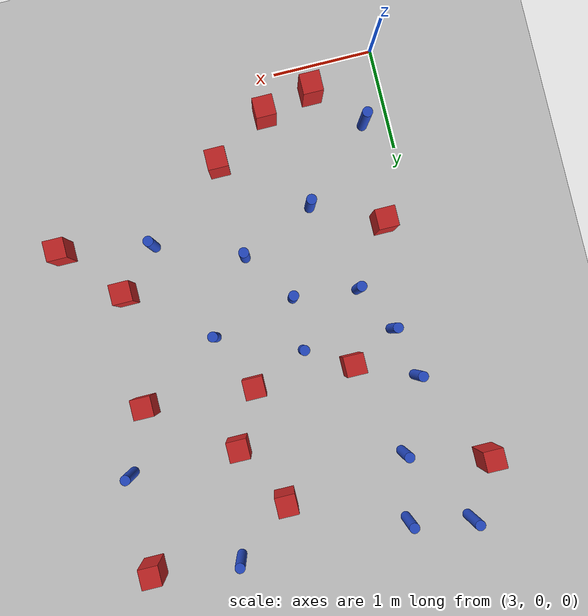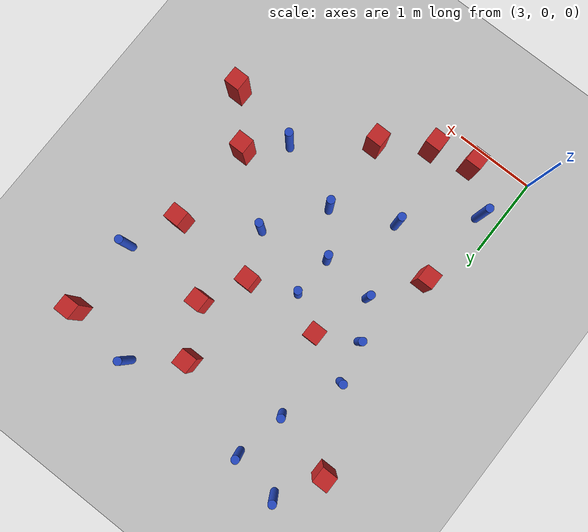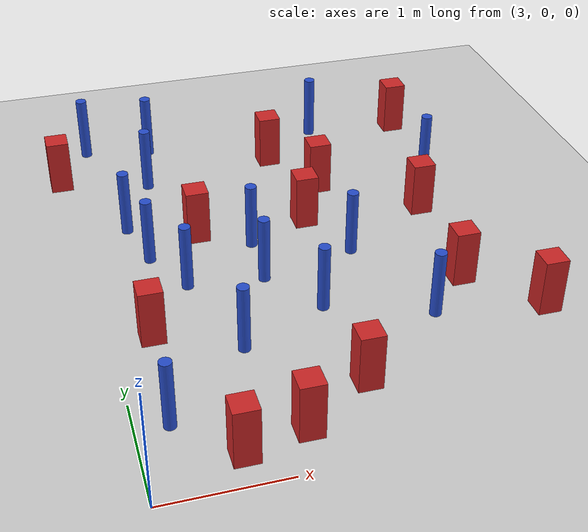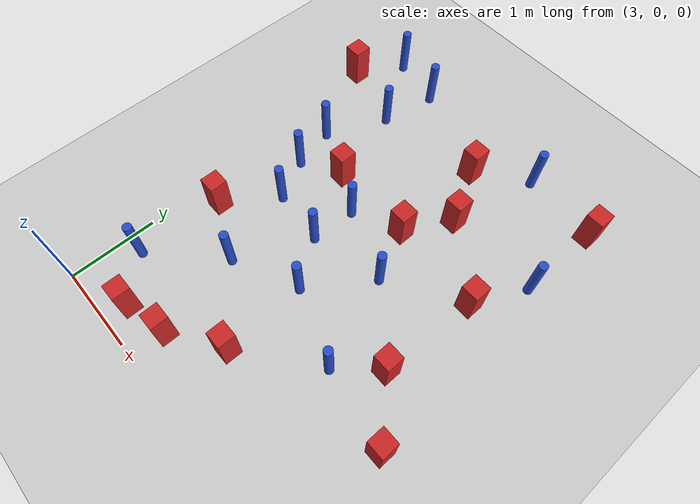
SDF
<sdf version="1.6">
 <world name="default">
  <model name="ground_plane">
   <static>1</static>
   <link name="link">
    <collision name="collision">
     <geometry><plane><normal>0 0 1</normal><size>100 100</size></plane></geometry>
     <surface><friction><ode><mu>100</mu><mu2>50</mu2></ode></friction></surface>
    </collision>
    <visual name="visual">
     <cast_shadows>0</cast_shadows>
     <geometry><plane><normal>0 0 1</normal><size>100 100</size></plane></geometry>
     <material>
      <ambient>1.0 1.0 1.0 1.0</ambient>
      <diffuse>0.8 0.8 0.8 1.0</diffuse>
      <specular>0.01 0.01 0.01 1.000000</specular>
     </material>
    </visual>
   </link>
  </model>
  <model name="square_post_obstacle7">
   <static>true</static>
   <pose>3.69847838354 0.283628622711 8.22691968438e-08 7.2212513382e-06 -7.54495500217e-07 2.29674213826e-05</pose>
   <link name="link">
    <pose>0 0 0.25 0 -0 0</pose>
    <inertial>
     <mass>100</mass>
     <inertia>
      <ixx>0.166667</ixx>
      <ixy>0</ixy>
      <ixz>0</ixz>
      <iyy>0.166667</iyy>
      <iyz>0</iyz>
      <izz>0.166667</izz>
     </inertia>
    </inertial>
    <collision name="collision"><geometry><box><size>.2 .2 .5</size></box></geometry></collision>
    <visual name="visual">
     <geometry><box><size>.2 .2 .5</size></box></geometry>
     <material>
      <script><name>Gazebo/Red</name><uri>file://media/materials/scripts/gazebo.material</uri></script>
     </material>
    </visual>
   </link>
  </model>
  <model name="square_post_obstacle17">
   <static>true</static>
   <pose>4.7562189727 0.773854882955 8.22691968438e-08 7.2212513382e-06 -7.54495500217e-07 2.29674213826e-05</pose>
   <link name="link">
    <pose>0 0 0.25 0 -0 0</pose>
    <inertial>
     <mass>100</mass>
     <inertia>
      <ixx>0.166667</ixx>
      <ixy>0</ixy>
      <ixz>0</ixz>
      <iyy>0.166667</iyy>
      <iyz>0</iyz>
      <izz>0.166667</izz>
     </inertia>
    </inertial>
    <collision name="collision"><geometry><box><size>.2 .2 .5</size></box></geometry></collision>
    <visual name="visual">
     <geometry><box><size>.2 .2 .5</size></box></geometry>
     <material>
      <script><name>Gazebo/Red</name><uri>file://media/materials/scripts/gazebo.material</uri></script>
     </material>
    </visual>
   </link>
  </model>
  <model name="square_post_obstacle21">
   <static>true</static>
   <pose>6.45568140457 1.25670714428 8.22691968438e-08 7.2212513382e-06 -7.54495500217e-07 2.29674213826e-05</pose>
   <link name="link">
    <pose>0 0 0.25 0 -0 0</pose>
    <inertial>
     <mass>100</mass>
     <inertia>
      <ixx>0.166667</ixx>
      <ixy>0</ixy>
      <ixz>0</ixz>
      <iyy>0.166667</iyy>
      <iyz>0</iyz>
      <izz>0.166667</izz>
     </inertia>
    </inertial>
    <collision name="collision"><geometry><box><size>.2 .2 .5</size></box></geometry></collision>
    <visual name="visual">
     <geometry><box><size>.2 .2 .5</size></box></geometry>
     <material>
      <script><name>Gazebo/Red</name><uri>file://media/materials/scripts/gazebo.material</uri></script>
     </material>
    </visual>
   </link>
  </model>
  <model name="pole_obstacle27">
   <static>true</static>
   <pose>3.25971585323 0.710181024626 2.88873142074e-08 -9.90536689285e-09 4.60219949002e-07 -1.20965994953e-07</pose>
   <link name="link">
    <pose>0 0 0.3 0 -0 0</pose>
    <inertial>
     <mass>1</mass>
     <inertia><ixx>0.145833</ixx><ixy>0</ixy><ixz>0</ixz><iyy>0.145833</iyy><iyz>0</iyz><izz>0.125</izz></inertia>
    </inertial>
    <collision name="collision">
     <geometry><cylinder><radius>0.05</radius><length>.6</length></cylinder></geometry>
    </collision>
    <visual name="visual">
     <geometry><cylinder><radius>0.05</radius><length>.6</length></cylinder></geometry>
     <material>
      <script><name>Gazebo/Blue</name><uri>file://media/materials/scripts/gazebo.material</uri></script>
     </material>
    </visual>
   </link>
  </model>
  <model name="pole_obstacle41">
   <static>true</static>
   <pose>5.18488431117 2.42695143436 2.88873142074e-08 -9.90536690245e-09 4.6021994898e-07 -1.20965994966e-07</pose>
   <link name="link">
    <pose>0 0 0.3 0 -0 0</pose>
    <inertial>
     <mass>1</mass>
     <inertia><ixx>0.145833</ixx><ixy>0</ixy><ixz>0</ixz><iyy>0.145833</iyy><iyz>0</iyz><izz>0.125</izz></inertia>
    </inertial>
    <collision name="collision">
     <geometry><cylinder><radius>0.05</radius><length>.6</length></cylinder></geometry>
    </collision>
    <visual name="visual">
     <geometry><cylinder><radius>0.05</radius><length>.6</length></cylinder></geometry>
     <material>
      <script><name>Gazebo/Blue</name><uri>file://media/materials/scripts/gazebo.material</uri></script>
     </material>
    </visual>
   </link>
  </model>
  <model name="pole_obstacle45">
   <static>true</static>
   <pose>3.97215387689 1.3896070158 2.88873142074e-08 -9.90536689315e-09 4.60219949002e-07 -1.20965994954e-07</pose>
   <link name="link">
    <pose>0 0 0.3 0 -0 0</pose>
    <inertial>
     <mass>1</mass>
     <inertia><ixx>0.145833</ixx><ixy>0</ixy><ixz>0</ixz><iyy>0.145833</iyy><iyz>0</iyz><izz>0.125</izz></inertia>
    </inertial>
    <collision name="collision">
     <geometry><cylinder><radius>0.05</radius><length>.6</length></cylinder></geometry>
    </collision>
    <visual name="visual">
     <geometry><cylinder><radius>0.05</radius><length>.6</length></cylinder></geometry>
     <material>
      <script><name>Gazebo/Blue</name><uri>file://media/materials/scripts/gazebo.material</uri></script>
     </material>
    </visual>
   </link>
  </model>
  <model name="square_post_obstacle44">
   <static>true</static>
   <pose>6.30355910788 4.48778055035 8.22691968438e-08 7.2212513382e-06 -7.54495500217e-07 2.29674213826e-05</pose>
   <link name="link">
    <pose>0 0 0.25 0 -0 0</pose>
    <inertial>
     <mass>100</mass>
     <inertia>
      <ixx>0.166667</ixx>
      <ixy>0</ixy>
      <ixz>0</ixz>
      <iyy>0.166667</iyy>
      <iyz>0</iyz>
      <izz>0.166667</izz>
     </inertia>
    </inertial>
    <collision name="collision"><geometry><box><size>.2 .2 .5</size></box></geometry></collision>
    <visual name="visual">
     <geometry><box><size>.2 .2 .5</size></box></geometry>
     <material>
      <script><name>Gazebo/Red</name><uri>file://media/materials/scripts/gazebo.material</uri></script>
     </material>
    </visual>
   </link>
  </model>
  <model name="pole_obstacle49">
   <static>true</static>
   <pose>4.71426595015 1.72589574953 2.88873142074e-08 -9.90536689445e-09 4.60219948999e-07 -1.20965994956e-07</pose>
   <link name="link">
    <pose>0 0 0.3 0 -0 0</pose>
    <inertial>
     <mass>1</mass>
     <inertia><ixx>0.145833</ixx><ixy>0</ixy><ixz>0</ixz><iyy>0.145833</iyy><iyz>0</iyz><izz>0.125</izz></inertia>
    </inertial>
    <collision name="collision">
     <geometry><cylinder><radius>0.05</radius><length>.6</length></cylinder></geometry>
    </collision>
    <visual name="visual">
     <geometry><cylinder><radius>0.05</radius><length>.6</length></cylinder></geometry>
     <material>
      <script><name>Gazebo/Blue</name><uri>file://media/materials/scripts/gazebo.material</uri></script>
     </material>
    </visual>
   </link>
  </model>
  <model name="square_post_obstacle57">
   <static>true</static>
   <pose>5.21335566755 3.52832100325 8.22691968438e-08 7.2212513382e-06 -7.54495500217e-07 2.29674213826e-05</pose>
   <link name="link">
    <pose>0 0 0.25 0 -0 0</pose>
    <inertial>
     <mass>100</mass>
     <inertia>
      <ixx>0.166667</ixx>
      <ixy>0</ixy>
      <ixz>0</ixz>
      <iyy>0.166667</iyy>
      <iyz>0</iyz>
      <izz>0.166667</izz>
     </inertia>
    </inertial>
    <collision name="collision"><geometry><box><size>.2 .2 .5</size></box></geometry></collision>
    <visual name="visual">
     <geometry><box><size>.2 .2 .5</size></box></geometry>
     <material>
      <script><name>Gazebo/Red</name><uri>file://media/materials/scripts/gazebo.material</uri></script>
     </material>
    </visual>
   </link>
  </model>
  <model name="pole_obstacle56">
   <static>true</static>
   <pose>3.71044648429 2.29824718554 2.88873142074e-08 -9.90536690232e-09 4.6021994898e-07 -1.20965994968e-07</pose>
   <link name="link">
    <pose>0 0 0.3 0 -0 0</pose>
    <inertial>
     <mass>1</mass>
     <inertia><ixx>0.145833</ixx><ixy>0</ixy><ixz>0</ixz><iyy>0.145833</iyy><iyz>0</iyz><izz>0.125</izz></inertia>
    </inertial>
    <collision name="collision">
     <geometry><cylinder><radius>0.05</radius><length>.6</length></cylinder></geometry>
    </collision>
    <visual name="visual">
     <geometry><cylinder><radius>0.05</radius><length>.6</length></cylinder></geometry>
     <material>
      <script><name>Gazebo/Blue</name><uri>file://media/materials/scripts/gazebo.material</uri></script>
     </material>
    </visual>
   </link>
  </model>
  <model name="pole_obstacle69">
   <static>true</static>
   <pose>6.29559286488 3.53321743497 2.88873142074e-08 -9.90536690245e-09 4.6021994898e-07 -1.20965994966e-07</pose>
   <link name="link">
    <pose>0 0 0.3 0 -0 0</pose>
    <inertial>
     <mass>1</mass>
     <inertia><ixx>0.145833</ixx><ixy>0</ixy><ixz>0</ixz><iyy>0.145833</iyy><iyz>0</iyz><izz>0.125</izz></inertia>
    </inertial>
    <collision name="collision">
     <geometry><cylinder><radius>0.05</radius><length>.6</length></cylinder></geometry>
    </collision>
    <visual name="visual">
     <geometry><cylinder><radius>0.05</radius><length>.6</length></cylinder></geometry>
     <material>
      <script><name>Gazebo/Blue</name><uri>file://media/materials/scripts/gazebo.material</uri></script>
     </material>
    </visual>
   </link>
  </model>
  <model name="pole_obstacle87">
   <static>true</static>
   <pose>4.35390807123 2.2327341651 2.88873142074e-08 -9.90536690245e-09 4.6021994898e-07 -1.20965994966e-07</pose>
   <link name="link">
    <pose>0 0 0.3 0 -0 0</pose>
    <inertial>
     <mass>1</mass>
     <inertia><ixx>0.145833</ixx><ixy>0</ixy><ixz>0</ixz><iyy>0.145833</iyy><iyz>0</iyz><izz>0.125</izz></inertia>
    </inertial>
    <collision name="collision">
     <geometry><cylinder><radius>0.05</radius><length>.6</length></cylinder></geometry>
    </collision>
    <visual name="visual">
     <geometry><cylinder><radius>0.05</radius><length>.6</length></cylinder></geometry>
     <material>
      <script><name>Gazebo/Blue</name><uri>file://media/materials/scripts/gazebo.material</uri></script>
     </material>
    </visual>
   </link>
  </model>
  <model name="pole_obstacle98">
   <static>true</static>
   <pose>5.56217445543 1.40648228304 2.88873142074e-08 -9.90536689445e-09 4.60219948999e-07 -1.20965994956e-07</pose>
   <link name="link">
    <pose>0 0 0.3 0 -0 0</pose>
    <inertial>
     <mass>1</mass>
     <inertia><ixx>0.145833</ixx><ixy>0</ixy><ixz>0</ixz><iyy>0.145833</iyy><iyz>0</iyz><izz>0.125</izz></inertia>
    </inertial>
    <collision name="collision">
     <geometry><cylinder><radius>0.05</radius><length>.6</length></cylinder></geometry>
    </collision>
    <visual name="visual">
     <geometry><cylinder><radius>0.05</radius><length>.6</length></cylinder></geometry>
     <material>
      <script><name>Gazebo/Blue</name><uri>file://media/materials/scripts/gazebo.material</uri></script>
     </material>
    </visual>
   </link>
  </model>
  <model name="pole_obstacle100">
   <static>true</static>
   <pose>5.44715196854 4.5788040256 2.88873142074e-08 -9.90536690842e-09 4.60219948965e-07 -1.20965994976e-07</pose>
   <link name="link">
    <pose>0 0 0.3 0 -0 0</pose>
    <inertial>
     <mass>1</mass>
     <inertia><ixx>0.145833</ixx><ixy>0</ixy><ixz>0</ixz><iyy>0.145833</iyy><iyz>0</iyz><izz>0.125</izz></inertia>
    </inertial>
    <collision name="collision">
     <geometry><cylinder><radius>0.05</radius><length>.6</length></cylinder></geometry>
    </collision>
    <visual name="visual">
     <geometry><cylinder><radius>0.05</radius><length>.6</length></cylinder></geometry>
     <material>
      <script><name>Gazebo/Blue</name><uri>file://media/materials/scripts/gazebo.material</uri></script>
     </material>
    </visual>
   </link>
  </model>
  <model name="square_post_obstacle90">
   <static>true</static>
   <pose>4.19303620978 0.398959268594 8.22691968438e-08 7.2212513382e-06 -7.54495500217e-07 2.29674213826e-05</pose>
   <link name="link">
    <pose>0 0 0.25 0 -0 0</pose>
    <inertial>
     <mass>100</mass>
     <inertia>
      <ixx>0.166667</ixx>
      <ixy>0</ixy>
      <ixz>0</ixz>
      <iyy>0.166667</iyy>
      <iyz>0</iyz>
      <izz>0.166667</izz>
     </inertia>
    </inertial>
    <collision name="collision"><geometry><box><size>.2 .2 .5</size></box></geometry></collision>
    <visual name="visual">
     <geometry><box><size>.2 .2 .5</size></box></geometry>
     <material>
      <script><name>Gazebo/Red</name><uri>file://media/materials/scripts/gazebo.material</uri></script>
     </material>
    </visual>
   </link>
  </model>
  <model name="square_post_obstacle99">
   <static>true</static>
   <pose>6.00378001598 2.92106011117 8.22691968438e-08 7.2212513382e-06 -7.54495500217e-07 2.29674213826e-05</pose>
   <link name="link">
    <pose>0 0 0.25 0 -0 0</pose>
    <inertial>
     <mass>100</mass>
     <inertia>
      <ixx>0.166667</ixx>
      <ixy>0</ixy>
      <ixz>0</ixz>
      <iyy>0.166667</iyy>
      <iyz>0</iyz>
      <izz>0.166667</izz>
     </inertia>
    </inertial>
    <collision name="collision"><geometry><box><size>.2 .2 .5</size></box></geometry></collision>
    <visual name="visual">
     <geometry><box><size>.2 .2 .5</size></box></geometry>
     <material>
      <script><name>Gazebo/Red</name><uri>file://media/materials/scripts/gazebo.material</uri></script>
     </material>
    </visual>
   </link>
  </model>
  <model name="pole_obstacle128">
   <static>true</static>
   <pose>3.17594143469 4.73082257719 2.88873142074e-08 -9.90536689859e-09 4.60219948989e-07 -1.20965994961e-07</pose>
   <link name="link">
    <pose>0 0 0.3 0 -0 0</pose>
    <inertial>
     <mass>1</mass>
     <inertia><ixx>0.145833</ixx><ixy>0</ixy><ixz>0</ixz><iyy>0.145833</iyy><iyz>0</iyz><izz>0.125</izz></inertia>
    </inertial>
    <collision name="collision">
     <geometry><cylinder><radius>0.05</radius><length>.6</length></cylinder></geometry>
    </collision>
    <visual name="visual">
     <geometry><cylinder><radius>0.05</radius><length>.6</length></cylinder></geometry>
     <material>
      <script><name>Gazebo/Blue</name><uri>file://media/materials/scripts/gazebo.material</uri></script>
     </material>
    </visual>
   </link>
  </model>
  <model name="pole_obstacle131">
   <static>true</static>
   <pose>3.47264341214 2.75851049705 2.88873142074e-08 -9.90536690232e-09 4.6021994898e-07 -1.20965994968e-07</pose>
   <link name="link">
    <pose>0 0 0.3 0 -0 0</pose>
    <inertial>
     <mass>1</mass>
     <inertia><ixx>0.145833</ixx><ixy>0</ixy><ixz>0</ixz><iyy>0.145833</iyy><iyz>0</iyz><izz>0.125</izz></inertia>
    </inertial>
    <collision name="collision">
     <geometry><cylinder><radius>0.05</radius><length>.6</length></cylinder></geometry>
    </collision>
    <visual name="visual">
     <geometry><cylinder><radius>0.05</radius><length>.6</length></cylinder></geometry>
     <material>
      <script><name>Gazebo/Blue</name><uri>file://media/materials/scripts/gazebo.material</uri></script>
     </material>
    </visual>
   </link>
  </model>
  <model name="square_post_obstacle119">
   <static>true</static>
   <pose>4.92586352393 2.99164080715 8.22691968438e-08 7.2212513382e-06 -7.54495500217e-07 2.29674213826e-05</pose>
   <link name="link">
    <pose>0 0 0.25 0 -0 0</pose>
    <inertial>
     <mass>100</mass>
     <inertia>
      <ixx>0.166667</ixx>
      <ixy>0</ixy>
      <ixz>0</ixz>
      <iyy>0.166667</iyy>
      <iyz>0</iyz>
      <izz>0.166667</izz>
     </inertia>
    </inertial>
    <collision name="collision"><geometry><box><size>.2 .2 .5</size></box></geometry></collision>
    <visual name="visual">
     <geometry><box><size>.2 .2 .5</size></box></geometry>
     <material>
      <script><name>Gazebo/Red</name><uri>file://media/materials/scripts/gazebo.material</uri></script>
     </material>
    </visual>
   </link>
  </model>
  <model name="pole_obstacle139">
   <static>true</static>
   <pose>3.35539292262 3.25813640397 2.88873142074e-08 -9.90536690232e-09 4.6021994898e-07 -1.20965994968e-07</pose>
   <link name="link">
    <pose>0 0 0.3 0 -0 0</pose>
    <inertial>
     <mass>1</mass>
     <inertia><ixx>0.145833</ixx><ixy>0</ixy><ixz>0</ixz><iyy>0.145833</iyy><iyz>0</iyz><izz>0.125</izz></inertia>
    </inertial>
    <collision name="collision">
     <geometry><cylinder><radius>0.05</radius><length>.6</length></cylinder></geometry>
    </collision>
    <visual name="visual">
     <geometry><cylinder><radius>0.05</radius><length>.6</length></cylinder></geometry>
     <material>
      <script><name>Gazebo/Blue</name><uri>file://media/materials/scripts/gazebo.material</uri></script>
     </material>
    </visual>
   </link>
  </model>
  <model name="pole_obstacle161">
   <static>true</static>
   <pose>4.37640517105 2.7554859093 2.88873142074e-08 -9.90536690245e-09 4.6021994898e-07 -1.20965994966e-07</pose>
   <link name="link">
    <pose>0 0 0.3 0 -0 0</pose>
    <inertial>
     <mass>1</mass>
     <inertia><ixx>0.145833</ixx><ixy>0</ixy><ixz>0</ixz><iyy>0.145833</iyy><iyz>0</iyz><izz>0.125</izz></inertia>
    </inertial>
    <collision name="collision">
     <geometry><cylinder><radius>0.05</radius><length>.6</length></cylinder></geometry>
    </collision>
    <visual name="visual">
     <geometry><cylinder><radius>0.05</radius><length>.6</length></cylinder></geometry>
     <material>
      <script><name>Gazebo/Blue</name><uri>file://media/materials/scripts/gazebo.material</uri></script>
     </material>
    </visual>
   </link>
  </model>
  <model name="pole_obstacle164">
   <static>true</static>
   <pose>3.66343606156 3.96158545792 2.88873142074e-08 -9.90536690801e-09 4.60219948966e-07 -1.20965994976e-07</pose>
   <link name="link">
    <pose>0 0 0.3 0 -0 0</pose>
    <inertial>
     <mass>1</mass>
     <inertia><ixx>0.145833</ixx><ixy>0</ixy><ixz>0</ixz><iyy>0.145833</iyy><iyz>0</iyz><izz>0.125</izz></inertia>
    </inertial>
    <collision name="collision">
     <geometry><cylinder><radius>0.05</radius><length>.6</length></cylinder></geometry>
    </collision>
    <visual name="visual">
     <geometry><cylinder><radius>0.05</radius><length>.6</length></cylinder></geometry>
     <material>
      <script><name>Gazebo/Blue</name><uri>file://media/materials/scripts/gazebo.material</uri></script>
     </material>
    </visual>
   </link>
  </model>
  <model name="square_post_obstacle161">
   <static>true</static>
   <pose>3.30918613439 1.71551098367 8.22691968438e-08 7.2212513382e-06 -7.54495500217e-07 2.29674213826e-05</pose>
   <link name="link">
    <pose>0 0 0.25 0 -0 0</pose>
    <inertial>
     <mass>100</mass>
     <inertia>
      <ixx>0.166667</ixx>
      <ixy>0</ixy>
      <ixz>0</ixz>
      <iyy>0.166667</iyy>
      <iyz>0</iyz>
      <izz>0.166667</izz>
     </inertia>
    </inertial>
    <collision name="collision"><geometry><box><size>.2 .2 .5</size></box></geometry></collision>
    <visual name="visual">
     <geometry><box><size>.2 .2 .5</size></box></geometry>
     <material>
      <script><name>Gazebo/Red</name><uri>file://media/materials/scripts/gazebo.material</uri></script>
     </material>
    </visual>
   </link>
  </model>
  <model name="square_post_obstacle168">
   <static>true</static>
   <pose>5.94467701898 1.80822397821 8.22691968438e-08 7.2212513382e-06 -7.54495500217e-07 2.29674213826e-05</pose>
   <link name="link">
    <pose>0 0 0.25 0 -0 0</pose>
    <inertial>
     <mass>100</mass>
     <inertia>
      <ixx>0.166667</ixx>
      <ixy>0</ixy>
      <ixz>0</ixz>
      <iyy>0.166667</iyy>
      <iyz>0</iyz>
      <izz>0.166667</izz>
     </inertia>
    </inertial>
    <collision name="collision"><geometry><box><size>.2 .2 .5</size></box></geometry></collision>
    <visual name="visual">
     <geometry><box><size>.2 .2 .5</size></box></geometry>
     <material>
      <script><name>Gazebo/Red</name><uri>file://media/materials/scripts/gazebo.material</uri></script>
     </material>
    </visual>
   </link>
  </model>
  <model name="pole_obstacle185">
   <static>true</static>
   <pose>3.7789129944 4.60777826412 2.88873142074e-08 -9.90536689859e-09 4.60219948989e-07 -1.20965994961e-07</pose>
   <link name="link">
    <pose>0 0 0.3 0 -0 0</pose>
    <inertial>
     <mass>1</mass>
     <inertia><ixx>0.145833</ixx><ixy>0</ixy><ixz>0</ixz><iyy>0.145833</iyy><iyz>0</iyz><izz>0.125</izz></inertia>
    </inertial>
    <collision name="collision">
     <geometry><cylinder><radius>0.05</radius><length>.6</length></cylinder></geometry>
    </collision>
    <visual name="visual">
     <geometry><cylinder><radius>0.05</radius><length>.6</length></cylinder></geometry>
     <material>
      <script><name>Gazebo/Blue</name><uri>file://media/materials/scripts/gazebo.material</uri></script>
     </material>
    </visual>
   </link>
  </model>
  <model name="square_post_obstacle186">
   <static>true</static>
   <pose>4.88984238049 4.14314933035 8.22691968438e-08 7.2212513382e-06 -7.54495500217e-07 2.29674213826e-05</pose>
   <link name="link">
    <pose>0 0 0.25 0 -0 0</pose>
    <inertial>
     <mass>100</mass>
     <inertia>
      <ixx>0.166667</ixx>
      <ixy>0</ixy>
      <ixz>0</ixz>
      <iyy>0.166667</iyy>
      <iyz>0</iyz>
      <izz>0.166667</izz>
     </inertia>
    </inertial>
    <collision name="collision"><geometry><box><size>.2 .2 .5</size></box></geometry></collision>
    <visual name="visual">
     <geometry><box><size>.2 .2 .5</size></box></geometry>
     <material>
      <script><name>Gazebo/Red</name><uri>file://media/materials/scripts/gazebo.material</uri></script>
     </material>
    </visual>
   </link>
  </model>
  <model name="square_post_obstacle199">
   <static>true</static>
   <pose>2.87201086483 4.19564037642 8.22691968438e-08 7.2212513382e-06 -7.54495500217e-07 2.29674213826e-05</pose>
   <link name="link">
    <pose>0 0 0.25 0 -0 0</pose>
    <inertial>
     <mass>100</mass>
     <inertia>
      <ixx>0.166667</ixx>
      <ixy>0</ixy>
      <ixz>0</ixz>
      <iyy>0.166667</iyy>
      <iyz>0</iyz>
      <izz>0.166667</izz>
     </inertia>
    </inertial>
    <collision name="collision"><geometry><box><size>.2 .2 .5</size></box></geometry></collision>
    <visual name="visual">
     <geometry><box><size>.2 .2 .5</size></box></geometry>
     <material>
      <script><name>Gazebo/Red</name><uri>file://media/materials/scripts/gazebo.material</uri></script>
     </material>
    </visual>
   </link>
  </model>
  <model name="square_post_obstacle234">
   <static>true</static>
   <pose>3.94087003262 3.00718996466 8.22691968438e-08 7.2212513382e-06 -7.54495500217e-07 2.29674213826e-05</pose>
   <link name="link">
    <pose>0 0 0.25 0 -0 0</pose>
    <inertial>
     <mass>100</mass>
     <inertia>
      <ixx>0.166667</ixx>
      <ixy>0</ixy>
      <ixz>0</ixz>
      <iyy>0.166667</iyy>
      <iyz>0</iyz>
      <izz>0.166667</izz>
     </inertia>
    </inertial>
    <collision name="collision"><geometry><box><size>.2 .2 .5</size></box></geometry></collision>
    <visual name="visual">
     <geometry><box><size>.2 .2 .5</size></box></geometry>
     <material>
      <script><name>Gazebo/Red</name><uri>file://media/materials/scripts/gazebo.material</uri></script>
     </material>
    </visual>
   </link>
  </model>
 </world>
</sdf>
